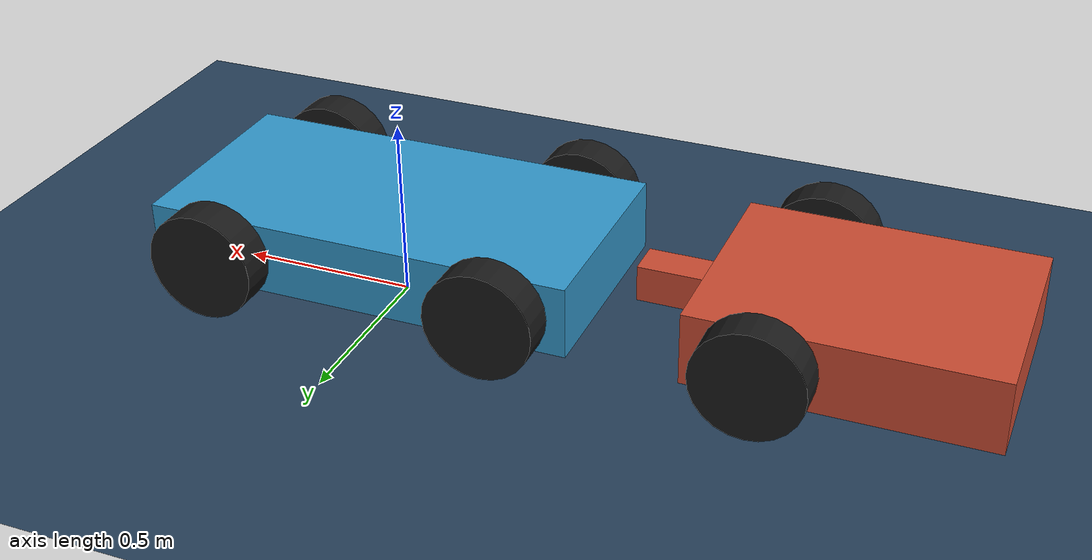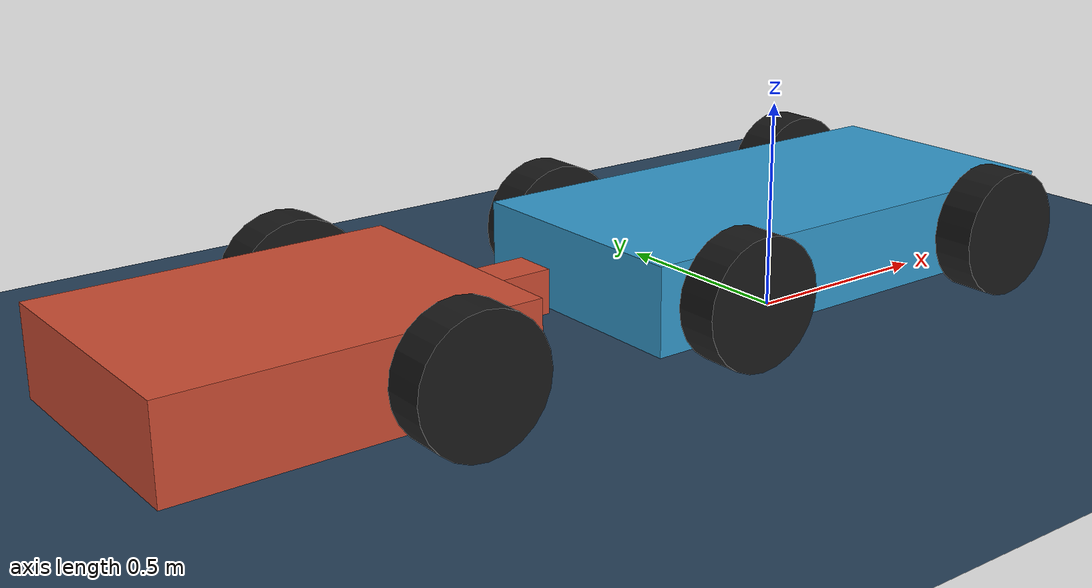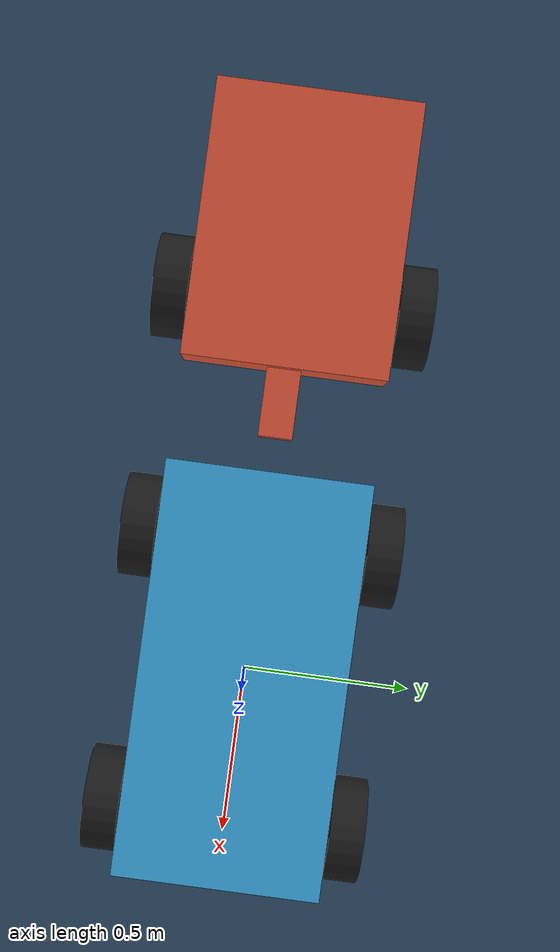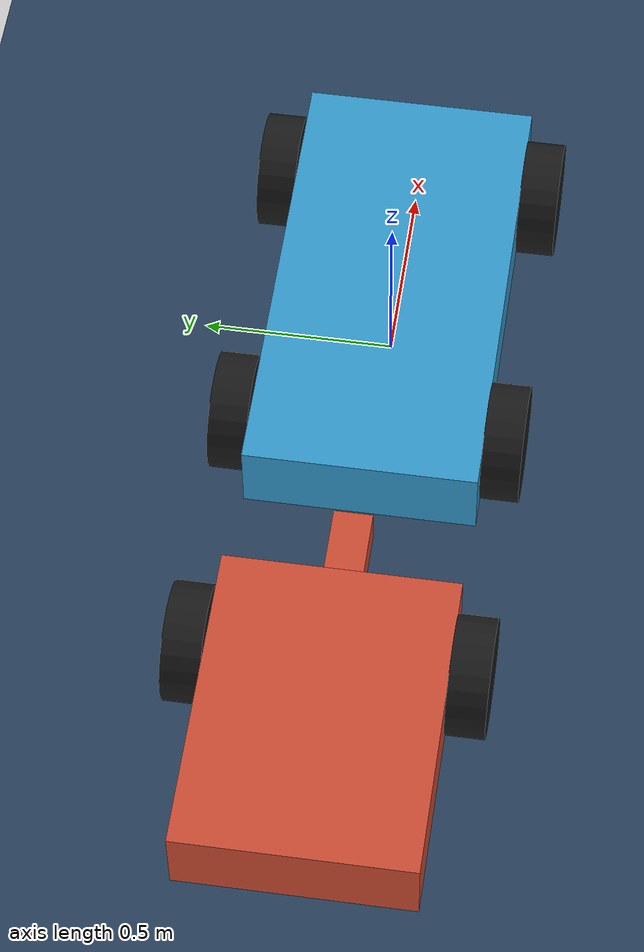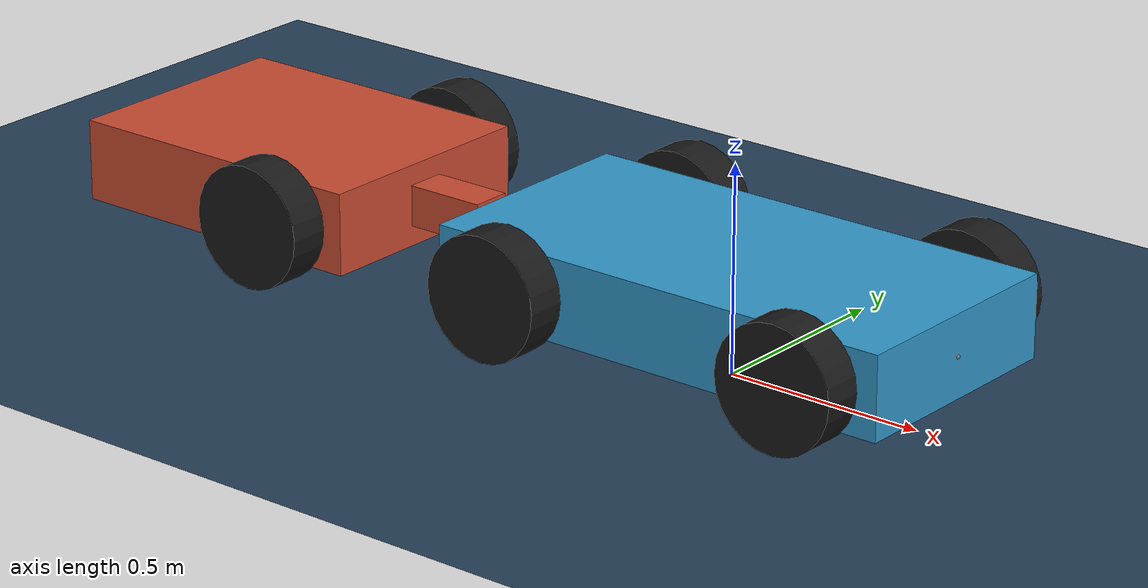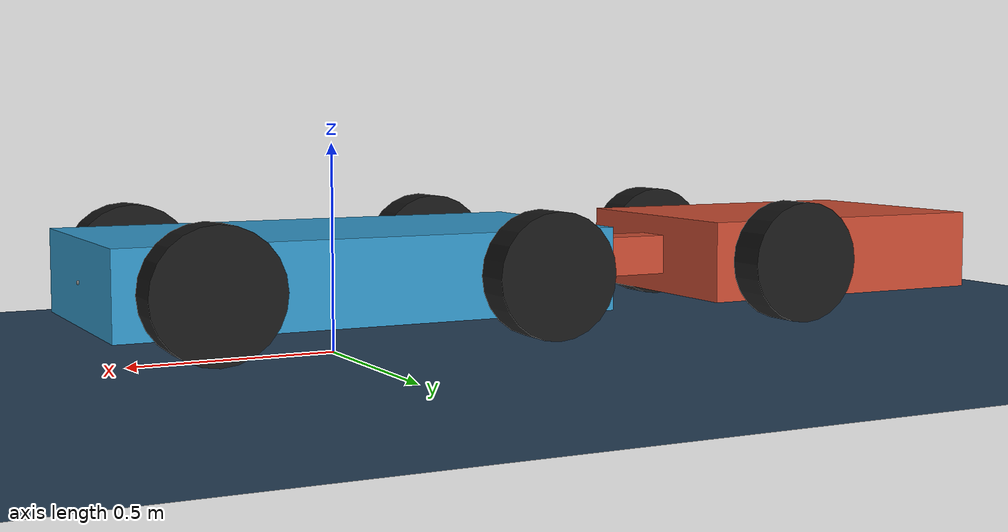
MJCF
<mujoco model="trailer_sway">
    <compiler angle="degree"/>
    <option timestep="0.001" integrator = "RK4" gravity="0 0 -9.81" cone = "elliptic"/>

    <asset>
        <texture type="skybox" builtin="gradient" rgb1="0.3 0.5 0.7" rgb2="0 0 0" width="512" height="512"/>
        <texture name="grid" type="2d" builtin="checker" rgb1="0.2 0.3 0.4" rgb2="0.1 0.2 0.3" width="512" height="512"/>
        <material name="grid" texture="grid" texrepeat="25 25" texuniform="true"/>
        <material name="car_mat" rgba="0.2 0.6 0.8 1"/>
        <material name="trailer_mat" rgba="0.8 0.3 0.2 1"/>
        <material name="wheel_mat" rgba="0.1 0.1 0.1 1"/>
    </asset>

    <default>
        <geom condim="4" friction="1.2 0.01 0.0001"/>
        <joint damping="0.05"/>
    </default>

    <worldbody>
        <light pos="0 0 5" dir="0 0 -1" directional="true"/>
        <geom name="floor" type="plane" size="100 100 0.1" material="grid"/>

        <body name="car" pos="0 0 0.2">
            <freejoint name="car_root"/>
            <geom name="car_body" type="box" size="0.6 0.3 0.1" mass="4300" material="car_mat"/>
            <site name = "front_pull_site" pos = ".6 0 0" quat="0.707 0 0.707 0"/>
            <body name="fl_wheel" pos="0.4 0.35 0">
                <joint name="fl_hinge" type="hinge" axis="0 1 0"/>
                <geom type="cylinder" size="0.15 0.05" zaxis="0 1 0" material="wheel_mat"/>
            </body>
            <body name="fr_wheel" pos="0.4 -0.35 0">
                <joint name="fr_hinge" type="hinge" axis="0 1 0"/>
                <geom type="cylinder" size="0.15 0.05" zaxis="0 1 0" material="wheel_mat"/>
            </body>

            <body name="rl_wheel" pos="-0.4 0.35 0">
                <joint name="rl_hinge" type="hinge" axis="0 1 0"/>
                <geom type="cylinder" size="0.15 0.05" zaxis="0 1 0" material="wheel_mat"/>
            </body>
            <body name="rr_wheel" pos="-0.4 -0.35 0">
                <joint name="rr_hinge" type="hinge" axis="0 1 0"/>
                <geom type="cylinder" size="0.15 0.05" zaxis="0 1 0" material="wheel_mat"/>
            </body>

            <body name="trailer" pos="-0.7 0 0">
                <joint name="hitch" type="ball" limited="true" range="0 90" damping="0.000"/>
                <geom name="trailer_tongue" type="box" size="0.2 0.05 0.05" pos="-0.2 0 0" mass="100" material="trailer_mat"/>
                <geom name="trailer_body" type="box" size="0.4 0.3 0.1" pos="-0.6 0 0" mass="4200" material="trailer_mat"/>

                <body name="tl_wheel" pos="-0.4 0.35 0">
                    <joint name="tl_hinge" type="hinge" axis="0 1 0"/>
                    <geom type="cylinder" size="0.15 0.05" zaxis="0 1 0" material="wheel_mat"/>
                </body>
                <body name="tr_wheel" pos="-0.4 -0.35 0">
                    <joint name="tr_hinge" type="hinge" axis="0 1 0"/>
                    <geom type="cylinder" size="0.15 0.05" zaxis="0 1 0" material="wheel_mat"/>
                </body>
            </body>
        </body>
    </worldbody>

    <actuator>
        <general name="front_pull" site="front_pull_site" gear="0 0 1 0 0 0" ctrlrange="0 20000"/>
    </actuator>
</mujoco>
